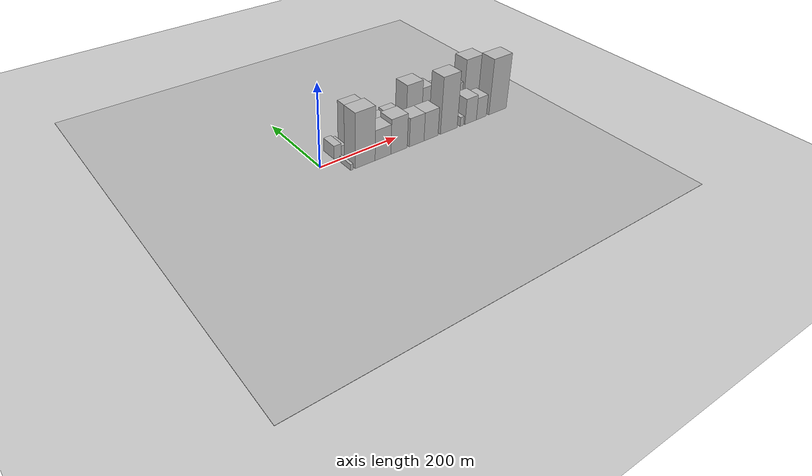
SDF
<?xml version="1.0" encoding="utf-8"?>

<sdf version="1.6">

   <world name="default">

      <gui fullscreen="0">

         <camera name="user_camera">

            <pose>-15 0 4.57585 0 0 0</pose>

            <view_controller>orbit</view_controller>

         </camera>

      </gui>

      <scene>

         <sky>

           <clouds>

             <speed>12</speed>

           </clouds>

         </sky>

         <ambient>0.4 0.4 0.4 1</ambient>

         <background>0.7 0.7 0.7 1</background>

         <shadows>1</shadows>

      </scene>

      <gravity>0 0 -9.8066</gravity>

      <magnetic_field>6e-06 2.3e-05 -4.2e-05</magnetic_field>

      <physics default="0" name="default_physics" type="ode">

         <ode>

            <solver>

               <type>quick</type>

               <iters>10</iters>

               <sor>1.0</sor>

               <use_dynamic_moi_rescaling>0</use_dynamic_moi_rescaling>

            </solver>

            <constraints>

               <cfm>0</cfm>

               <erp>0.2</erp>

               <contact_max_correcting_vel>100</contact_max_correcting_vel>

               <contact_surface_layer>0.001</contact_surface_layer>

            </constraints>

         </ode>

         <max_step_size>0.004</max_step_size>

         <real_time_factor>1</real_time_factor>

         <real_time_update_rate>250</real_time_update_rate>

      </physics>

      <light name="sun" type="directional">

         <cast_shadows>1</cast_shadows>

         <pose>0 0 10 0 0 0</pose>

         <diffuse>0.8 0.8 0.8 1</diffuse>

         <specular>0.2 0.2 0.2 1</specular>

         <attenuation>

            <range>1000</range>

            <constant>0.9</constant>

            <linear>0.01</linear>

            <quadratic>0.001</quadratic>

         </attenuation>

         <direction>-0.5 0.1 -0.9</direction>

      </light>

      <include>

         <name>ground_plane_1</name>

         <uri>model://HANNAS_ground_plane</uri>

         <pose>0 0 0  0 0 0</pose>

      </include>

      <include>

         <name>ground_plane_2</name>

         <uri>model://HANNAS_ground_plane</uri>

         <pose>100 0 0  0 0 0</pose>

      </include>

      <model name="building_1">

         <static>1</static>

         <pose frame="">49.5607 27.5000 0 0.000000 0.000000 1.570796</pose>

         <link name="link">

            <pose frame="">0 0 16.50 0 0 0</pose>

            <collision name="collision">

               <geometry>

                  <box>

                     <size>40.0000 19.1213 33.0000</size>

                  </box>

               </geometry>

               <max_contacts>10</max_contacts>

               <surface>

                  <contact>

                     <ode/>

                  </contact>

                  <bounce/>

                  <friction>

                     <torsional>

                        <ode/>

                     </torsional>

                     <ode/>

                  </friction>

               </surface>

            </collision>

            <visual name="visual">

               <cast_shadows>0</cast_shadows>

               <geometry>

                  <box>

                     <size>40.0000 19.1213 33.0000</size>

                  </box>

               </geometry>

               <material>

                  <script>

                     <uri>model://HANNAS_wall/materials/scripts</uri>

                     <uri>model://HANNAS_wall/materials/textures</uri>

                     <name>vrc/HANNAS_wall</name>

                  </script>

               </material>

            </visual>

            <self_collide>0</self_collide>

            <enable_wind>0</enable_wind>

            <kinematic>0</kinematic>

         </link>

      </model>

      <model name="building_2">

         <static>1</static>

         <pose frame="">64.6981 27.5000 0 0.000000 0.000000 1.570796</pose>

         <link name="link">

            <pose frame="">0 0 13.50 0 0 0</pose>

            <collision name="collision">

               <geometry>

                  <box>

                     <size>40.0000 11.1535 27.0000</size>

                  </box>

               </geometry>

               <max_contacts>10</max_contacts>

               <surface>

                  <contact>

                     <ode/>

                  </contact>

                  <bounce/>

                  <friction>

                     <torsional>

                        <ode/>

                     </torsional>

                     <ode/>

                  </friction>

               </surface>

            </collision>

            <visual name="visual">

               <cast_shadows>0</cast_shadows>

               <geometry>

                  <box>

                     <size>40.0000 11.1535 27.0000</size>

                  </box>

               </geometry>

               <material>

                  <script>

                     <uri>model://HANNAS_wall/materials/scripts</uri>

                     <uri>model://HANNAS_wall/materials/textures</uri>

                     <name>vrc/HANNAS_wall</name>

                  </script>

               </material>

            </visual>

            <self_collide>0</self_collide>

            <enable_wind>0</enable_wind>

            <kinematic>0</kinematic>

         </link>

      </model>

      <model name="building_3">

         <static>1</static>

         <pose frame="">99.5088 27.5000 0 0.000000 0.000000 1.570796</pose>

         <link name="link">

            <pose frame="">0 0 57.00 0 0 0</pose>

            <collision name="collision">

               <geometry>

                  <box>

                     <size>40.0000 44.4681 114.0000</size>

                  </box>

               </geometry>

               <max_contacts>10</max_contacts>

               <surface>

                  <contact>

                     <ode/>

                  </contact>

                  <bounce/>

                  <friction>

                     <torsional>

                        <ode/>

                     </torsional>

                     <ode/>

                  </friction>

               </surface>

            </collision>

            <visual name="visual">

               <cast_shadows>0</cast_shadows>

               <geometry>

                  <box>

                     <size>40.0000 44.4681 114.0000</size>

                  </box>

               </geometry>

               <material>

                  <script>

                     <uri>model://HANNAS_wall/materials/scripts</uri>

                     <uri>model://HANNAS_wall/materials/textures</uri>

                     <name>vrc/HANNAS_wall</name>

                  </script>

               </material>

            </visual>

            <self_collide>0</self_collide>

            <enable_wind>0</enable_wind>

            <kinematic>0</kinematic>

         </link>

      </model>

      <model name="building_4">

         <static>1</static>

         <pose frame="">136.1233 27.5000 0 0.000000 0.000000 1.570796</pose>

         <link name="link">

            <pose frame="">0 0 28.50 0 0 0</pose>

            <collision name="collision">

               <geometry>

                  <box>

                     <size>40.0000 28.7609 57.0000</size>

                  </box>

               </geometry>

               <max_contacts>10</max_contacts>

               <surface>

                  <contact>

                     <ode/>

                  </contact>

                  <bounce/>

                  <friction>

                     <torsional>

                        <ode/>

                     </torsional>

                     <ode/>

                  </friction>

               </surface>

            </collision>

            <visual name="visual">

               <cast_shadows>0</cast_shadows>

               <geometry>

                  <box>

                     <size>40.0000 28.7609 57.0000</size>

                  </box>

               </geometry>

               <material>

                  <script>

                     <uri>model://HANNAS_wall/materials/scripts</uri>

                     <uri>model://HANNAS_wall/materials/textures</uri>

                     <name>vrc/HANNAS_wall</name>

                  </script>

               </material>

            </visual>

            <self_collide>0</self_collide>

            <enable_wind>0</enable_wind>

            <kinematic>0</kinematic>

         </link>

      </model>

      <model name="building_5">

         <static>1</static>

         <pose frame="">171.5730 27.5000 0 0.000000 0.000000 1.570796</pose>

         <link name="link">

            <pose frame="">0 0 27.00 0 0 0</pose>

            <collision name="collision">

               <geometry>

                  <box>

                     <size>40.0000 30.1384 54.0000</size>

                  </box>

               </geometry>

               <max_contacts>10</max_contacts>

               <surface>

                  <contact>

                     <ode/>

                  </contact>

                  <bounce/>

                  <friction>

                     <torsional>

                        <ode/>

                     </torsional>

                     <ode/>

                  </friction>

               </surface>

            </collision>

            <visual name="visual">

               <cast_shadows>0</cast_shadows>

               <geometry>

                  <box>

                     <size>40.0000 30.1384 54.0000</size>

                  </box>

               </geometry>

               <material>

                  <script>

                     <uri>model://HANNAS_wall/materials/scripts</uri>

                     <uri>model://HANNAS_wall/materials/textures</uri>

                     <name>vrc/HANNAS_wall</name>

                  </script>

               </material>

            </visual>

            <self_collide>0</self_collide>

            <enable_wind>0</enable_wind>

            <kinematic>0</kinematic>

         </link>

      </model>

      <model name="building_6">

         <static>1</static>

         <pose frame="">204.2278 27.5000 0 0.000000 0.000000 1.570796</pose>

         <link name="link">

            <pose frame="">0 0 30.00 0 0 0</pose>

            <collision name="collision">

               <geometry>

                  <box>

                     <size>40.0000 35.1713 60.0000</size>

                  </box>

               </geometry>

               <max_contacts>10</max_contacts>

               <surface>

                  <contact>

                     <ode/>

                  </contact>

                  <bounce/>

                  <friction>

                     <torsional>

                        <ode/>

                     </torsional>

                     <ode/>

                  </friction>

               </surface>

            </collision>

            <visual name="visual">

               <cast_shadows>0</cast_shadows>

               <geometry>

                  <box>

                     <size>40.0000 35.1713 60.0000</size>

                  </box>

               </geometry>

               <material>

                  <script>

                     <uri>model://HANNAS_wall/materials/scripts</uri>

                     <uri>model://HANNAS_wall/materials/textures</uri>

                     <name>vrc/HANNAS_wall</name>

                  </script>

               </material>

            </visual>

            <self_collide>0</self_collide>

            <enable_wind>0</enable_wind>

            <kinematic>0</kinematic>

         </link>

      </model>

      <model name="building_7">

         <static>1</static>

         <pose frame="">227.9270 27.5000 0 0.000000 0.000000 1.570796</pose>

         <link name="link">

            <pose frame="">0 0 13.50 0 0 0</pose>

            <collision name="collision">

               <geometry>

                  <box>

                     <size>40.0000 12.2270 27.0000</size>

                  </box>

               </geometry>

               <max_contacts>10</max_contacts>

               <surface>

                  <contact>

                     <ode/>

                  </contact>

                  <bounce/>

                  <friction>

                     <torsional>

                        <ode/>

                     </torsional>

                     <ode/>

                  </friction>

               </surface>

            </collision>

            <visual name="visual">

               <cast_shadows>0</cast_shadows>

               <geometry>

                  <box>

                     <size>40.0000 12.2270 27.0000</size>

                  </box>

               </geometry>

               <material>

                  <script>

                     <uri>model://HANNAS_wall/materials/scripts</uri>

                     <uri>model://HANNAS_wall/materials/textures</uri>

                     <name>vrc/HANNAS_wall</name>

                  </script>

               </material>

            </visual>

            <self_collide>0</self_collide>

            <enable_wind>0</enable_wind>

            <kinematic>0</kinematic>

         </link>

      </model>

      <model name="building_8">

         <static>1</static>

         <pose frame="">256.5450 27.5000 0 0.000000 0.000000 1.570796</pose>

         <link name="link">

            <pose frame="">0 0 58.50 0 0 0</pose>

            <collision name="collision">

               <geometry>

                  <box>

                     <size>40.0000 45.0088 117.0000</size>

                  </box>

               </geometry>

               <max_contacts>10</max_contacts>

               <surface>

                  <contact>

                     <ode/>

                  </contact>

                  <bounce/>

                  <friction>

                     <torsional>

                        <ode/>

                     </torsional>

                     <ode/>

                  </friction>

               </surface>

            </collision>

            <visual name="visual">

               <cast_shadows>0</cast_shadows>

               <geometry>

                  <box>

                     <size>40.0000 45.0088 117.0000</size>

                  </box>

               </geometry>

               <material>

                  <script>

                     <uri>model://HANNAS_wall/materials/scripts</uri>

                     <uri>model://HANNAS_wall/materials/textures</uri>

                     <name>vrc/HANNAS_wall</name>

                  </script>

               </material>

            </visual>

            <self_collide>0</self_collide>

            <enable_wind>0</enable_wind>

            <kinematic>0</kinematic>

         </link>

      </model>

      <model name="building_9">

         <static>1</static>

         <pose frame="">294.1716 27.5000 0 0.000000 0.000000 1.570796</pose>

         <link name="link">

            <pose frame="">0 0 48.00 0 0 0</pose>

            <collision name="collision">

               <geometry>

                  <box>

                     <size>40.0000 30.2445 96.0000</size>

                  </box>

               </geometry>

               <max_contacts>10</max_contacts>

               <surface>

                  <contact>

                     <ode/>

                  </contact>

                  <bounce/>

                  <friction>

                     <torsional>

                        <ode/>

                     </torsional>

                     <ode/>

                  </friction>

               </surface>

            </collision>

            <visual name="visual">

               <cast_shadows>0</cast_shadows>

               <geometry>

                  <box>

                     <size>40.0000 30.2445 96.0000</size>

                  </box>

               </geometry>

               <material>

                  <script>

                     <uri>model://HANNAS_wall/materials/scripts</uri>

                     <uri>model://HANNAS_wall/materials/textures</uri>

                     <name>vrc/HANNAS_wall</name>

                  </script>

               </material>

            </visual>

            <self_collide>0</self_collide>

            <enable_wind>0</enable_wind>

            <kinematic>0</kinematic>

         </link>

      </model>

      <model name="building_10">

         <static>1</static>

         <pose frame="">331.5309 27.5000 0 0.000000 0.000000 1.570796</pose>

         <link name="link">

            <pose frame="">0 0 40.50 0 0 0</pose>

            <collision name="collision">

               <geometry>

                  <box>

                     <size>40.0000 44.4741 81.0000</size>

                  </box>

               </geometry>

               <max_contacts>10</max_contacts>

               <surface>

                  <contact>

                     <ode/>

                  </contact>

                  <bounce/>

                  <friction>

                     <torsional>

                        <ode/>

                     </torsional>

                     <ode/>

                  </friction>

               </surface>

            </collision>

            <visual name="visual">

               <cast_shadows>0</cast_shadows>

               <geometry>

                  <box>

                     <size>40.0000 44.4741 81.0000</size>

                  </box>

               </geometry>

               <material>

                  <script>

                     <uri>model://HANNAS_wall/materials/scripts</uri>

                     <uri>model://HANNAS_wall/materials/textures</uri>

                     <name>vrc/HANNAS_wall</name>

                  </script>

               </material>

            </visual>

            <self_collide>0</self_collide>

            <enable_wind>0</enable_wind>

            <kinematic>0</kinematic>

         </link>

      </model>

      <model name="building_11">

         <static>1</static>

         <pose frame="">379.2268 27.5000 0 0.000000 0.000000 1.570796</pose>

         <link name="link">

            <pose frame="">0 0 37.50 0 0 0</pose>

            <collision name="collision">

               <geometry>

                  <box>

                     <size>40.0000 40.9176 75.0000</size>

                  </box>

               </geometry>

               <max_contacts>10</max_contacts>

               <surface>

                  <contact>

                     <ode/>

                  </contact>

                  <bounce/>

                  <friction>

                     <torsional>

                        <ode/>

                     </torsional>

                     <ode/>

                  </friction>

               </surface>

            </collision>

            <visual name="visual">

               <cast_shadows>0</cast_shadows>

               <geometry>

                  <box>

                     <size>40.0000 40.9176 75.0000</size>

                  </box>

               </geometry>

               <material>

                  <script>

                     <uri>model://HANNAS_wall/materials/scripts</uri>

                     <uri>model://HANNAS_wall/materials/textures</uri>

                     <name>vrc/HANNAS_wall</name>

                  </script>

               </material>

            </visual>

            <self_collide>0</self_collide>

            <enable_wind>0</enable_wind>

            <kinematic>0</kinematic>

         </link>

      </model>

      <model name="building_12">

         <static>1</static>

         <pose frame="">431.3917 27.5000 0 0.000000 0.000000 1.570796</pose>

         <link name="link">

            <pose frame="">0 0 64.50 0 0 0</pose>

            <collision name="collision">

               <geometry>

                  <box>

                     <size>40.0000 51.4122 129.0000</size>

                  </box>

               </geometry>

               <max_contacts>10</max_contacts>

               <surface>

                  <contact>

                     <ode/>

                  </contact>

                  <bounce/>

                  <friction>

                     <torsional>

                        <ode/>

                     </torsional>

                     <ode/>

                  </friction>

               </surface>

            </collision>

            <visual name="visual">

               <cast_shadows>0</cast_shadows>

               <geometry>

                  <box>

                     <size>40.0000 51.4122 129.0000</size>

                  </box>

               </geometry>

               <material>

                  <script>

                     <uri>model://HANNAS_wall/materials/scripts</uri>

                     <uri>model://HANNAS_wall/materials/textures</uri>

                     <name>vrc/HANNAS_wall</name>

                  </script>

               </material>

            </visual>

            <self_collide>0</self_collide>

            <enable_wind>0</enable_wind>

            <kinematic>0</kinematic>

         </link>

      </model>

      <model name="building_13">

         <static>1</static>

         <pose frame="">48.3441 -27.5000 0 0.000000 0.000000 1.570796</pose>

         <link name="link">

            <pose frame="">0 0 7.50 0 0 0</pose>

            <collision name="collision">

               <geometry>

                  <box>

                     <size>40.0000 6.6882 15.0000</size>

                  </box>

               </geometry>

               <max_contacts>10</max_contacts>

               <surface>

                  <contact>

                     <ode/>

                  </contact>

                  <bounce/>

                  <friction>

                     <torsional>

                        <ode/>

                     </torsional>

                     <ode/>

                  </friction>

               </surface>

            </collision>

            <visual name="visual">

               <cast_shadows>0</cast_shadows>

               <geometry>

                  <box>

                     <size>40.0000 6.6882 15.0000</size>

                  </box>

               </geometry>

               <material>

                  <script>

                     <uri>model://HANNAS_wall/materials/scripts</uri>

                     <uri>model://HANNAS_wall/materials/textures</uri>

                     <name>vrc/HANNAS_wall</name>

                  </script>

               </material>

            </visual>

            <self_collide>0</self_collide>

            <enable_wind>0</enable_wind>

            <kinematic>0</kinematic>

         </link>

      </model>

      <model name="building_14">

         <static>1</static>

         <pose frame="">82.2891 -27.5000 0 0.000000 0.000000 1.570796</pose>

         <link name="link">

            <pose frame="">0 0 67.50 0 0 0</pose>

            <collision name="collision">

               <geometry>

                  <box>

                     <size>40.0000 51.2019 135.0000</size>

                  </box>

               </geometry>

               <max_contacts>10</max_contacts>

               <surface>

                  <contact>

                     <ode/>

                  </contact>

                  <bounce/>

                  <friction>

                     <torsional>

                        <ode/>

                     </torsional>

                     <ode/>

                  </friction>

               </surface>

            </collision>

            <visual name="visual">

               <cast_shadows>0</cast_shadows>

               <geometry>

                  <box>

                     <size>40.0000 51.2019 135.0000</size>

                  </box>

               </geometry>

               <material>

                  <script>

                     <uri>model://HANNAS_wall/materials/scripts</uri>

                     <uri>model://HANNAS_wall/materials/textures</uri>

                     <name>vrc/HANNAS_wall</name>

                  </script>

               </material>

            </visual>

            <self_collide>0</self_collide>

            <enable_wind>0</enable_wind>

            <kinematic>0</kinematic>

         </link>

      </model>

      <model name="building_15">

         <static>1</static>

         <pose frame="">129.0529 -27.5000 0 0.000000 0.000000 1.570796</pose>

         <link name="link">

            <pose frame="">0 0 37.50 0 0 0</pose>

            <collision name="collision">

               <geometry>

                  <box>

                     <size>40.0000 42.3256 75.0000</size>

                  </box>

               </geometry>

               <max_contacts>10</max_contacts>

               <surface>

                  <contact>

                     <ode/>

                  </contact>

                  <bounce/>

                  <friction>

                     <torsional>

                        <ode/>

                     </torsional>

                     <ode/>

                  </friction>

               </surface>

            </collision>

            <visual name="visual">

               <cast_shadows>0</cast_shadows>

               <geometry>

                  <box>

                     <size>40.0000 42.3256 75.0000</size>

                  </box>

               </geometry>

               <material>

                  <script>

                     <uri>model://HANNAS_wall/materials/scripts</uri>

                     <uri>model://HANNAS_wall/materials/textures</uri>

                     <name>vrc/HANNAS_wall</name>

                  </script>

               </material>

            </visual>

            <self_collide>0</self_collide>

            <enable_wind>0</enable_wind>

            <kinematic>0</kinematic>

         </link>

      </model>

      <model name="building_16">

         <static>1</static>

         <pose frame="">172.3484 -27.5000 0 0.000000 0.000000 1.570796</pose>

         <link name="link">

            <pose frame="">0 0 43.50 0 0 0</pose>

            <collision name="collision">

               <geometry>

                  <box>

                     <size>40.0000 44.2655 87.0000</size>

                  </box>

               </geometry>

               <max_contacts>10</max_contacts>

               <surface>

                  <contact>

                     <ode/>

                  </contact>

                  <bounce/>

                  <friction>

                     <torsional>

                        <ode/>

                     </torsional>

                     <ode/>

                  </friction>

               </surface>

            </collision>

            <visual name="visual">

               <cast_shadows>0</cast_shadows>

               <geometry>

                  <box>

                     <size>40.0000 44.2655 87.0000</size>

                  </box>

               </geometry>

               <material>

                  <script>

                     <uri>model://HANNAS_wall/materials/scripts</uri>

                     <uri>model://HANNAS_wall/materials/textures</uri>

                     <name>vrc/HANNAS_wall</name>

                  </script>

               </material>

            </visual>

            <self_collide>0</self_collide>

            <enable_wind>0</enable_wind>

            <kinematic>0</kinematic>

         </link>

      </model>

      <model name="building_17">

         <static>1</static>

         <pose frame="">221.0732 -27.5000 0 0.000000 0.000000 1.570796</pose>

         <link name="link">

            <pose frame="">0 0 36.00 0 0 0</pose>

            <collision name="collision">

               <geometry>

                  <box>

                     <size>40.0000 41.1842 72.0000</size>

                  </box>

               </geometry>

               <max_contacts>10</max_contacts>

               <surface>

                  <contact>

                     <ode/>

                  </contact>

                  <bounce/>

                  <friction>

                     <torsional>

                        <ode/>

                     </torsional>

                     <ode/>

                  </friction>

               </surface>

            </collision>

            <visual name="visual">

               <cast_shadows>0</cast_shadows>

               <geometry>

                  <box>

                     <size>40.0000 41.1842 72.0000</size>

                  </box>

               </geometry>

               <material>

                  <script>

                     <uri>model://HANNAS_wall/materials/scripts</uri>

                     <uri>model://HANNAS_wall/materials/textures</uri>

                     <name>vrc/HANNAS_wall</name>

                  </script>

               </material>

            </visual>

            <self_collide>0</self_collide>

            <enable_wind>0</enable_wind>

            <kinematic>0</kinematic>

         </link>

      </model>

      <model name="building_18">

         <static>1</static>

         <pose frame="">261.8798 -27.5000 0 0.000000 0.000000 1.570796</pose>

         <link name="link">

            <pose frame="">0 0 36.00 0 0 0</pose>

            <collision name="collision">

               <geometry>

                  <box>

                     <size>40.0000 40.4288 72.0000</size>

                  </box>

               </geometry>

               <max_contacts>10</max_contacts>

               <surface>

                  <contact>

                     <ode/>

                  </contact>

                  <bounce/>

                  <friction>

                     <torsional>

                        <ode/>

                     </torsional>

                     <ode/>

                  </friction>

               </surface>

            </collision>

            <visual name="visual">

               <cast_shadows>0</cast_shadows>

               <geometry>

                  <box>

                     <size>40.0000 40.4288 72.0000</size>

                  </box>

               </geometry>

               <material>

                  <script>

                     <uri>model://HANNAS_wall/materials/scripts</uri>

                     <uri>model://HANNAS_wall/materials/textures</uri>

                     <name>vrc/HANNAS_wall</name>

                  </script>

               </material>

            </visual>

            <self_collide>0</self_collide>

            <enable_wind>0</enable_wind>

            <kinematic>0</kinematic>

         </link>

      </model>

      <model name="building_19">

         <static>1</static>

         <pose frame="">313.8460 -27.5000 0 0.000000 0.000000 1.570796</pose>

         <link name="link">

            <pose frame="">0 0 72.00 0 0 0</pose>

            <collision name="collision">

               <geometry>

                  <box>

                     <size>40.0000 49.5036 144.0000</size>

                  </box>

               </geometry>

               <max_contacts>10</max_contacts>

               <surface>

                  <contact>

                     <ode/>

                  </contact>

                  <bounce/>

                  <friction>

                     <torsional>

                        <ode/>

                     </torsional>

                     <ode/>

                  </friction>

               </surface>

            </collision>

            <visual name="visual">

               <cast_shadows>0</cast_shadows>

               <geometry>

                  <box>

                     <size>40.0000 49.5036 144.0000</size>

                  </box>

               </geometry>

               <material>

                  <script>

                     <uri>model://HANNAS_wall/materials/scripts</uri>

                     <uri>model://HANNAS_wall/materials/textures</uri>

                     <name>vrc/HANNAS_wall</name>

                  </script>

               </material>

            </visual>

            <self_collide>0</self_collide>

            <enable_wind>0</enable_wind>

            <kinematic>0</kinematic>

         </link>

      </model>

      <model name="building_20">

         <static>1</static>

         <pose frame="">352.9957 -27.5000 0 0.000000 0.000000 1.570796</pose>

         <link name="link">

            <pose frame="">0 0 12.00 0 0 0</pose>

            <collision name="collision">

               <geometry>

                  <box>

                     <size>40.0000 10.7958 24.0000</size>

                  </box>

               </geometry>

               <max_contacts>10</max_contacts>

               <surface>

                  <contact>

                     <ode/>

                  </contact>

                  <bounce/>

                  <friction>

                     <torsional>

                        <ode/>

                     </torsional>

                     <ode/>

                  </friction>

               </surface>

            </collision>

            <visual name="visual">

               <cast_shadows>0</cast_shadows>

               <geometry>

                  <box>

                     <size>40.0000 10.7958 24.0000</size>

                  </box>

               </geometry>

               <material>

                  <script>

                     <uri>model://HANNAS_wall/materials/scripts</uri>

                     <uri>model://HANNAS_wall/materials/textures</uri>

                     <name>vrc/HANNAS_wall</name>

                  </script>

               </material>

            </visual>

            <self_collide>0</self_collide>

            <enable_wind>0</enable_wind>

            <kinematic>0</kinematic>

         </link>

      </model>

      <model name="building_21">

         <static>1</static>

         <pose frame="">379.7557 -27.5000 0 0.000000 0.000000 1.570796</pose>

         <link name="link">

            <pose frame="">0 0 33.00 0 0 0</pose>

            <collision name="collision">

               <geometry>

                  <box>

                     <size>40.0000 34.7243 66.0000</size>

                  </box>

               </geometry>

               <max_contacts>10</max_contacts>

               <surface>

                  <contact>

                     <ode/>

                  </contact>

                  <bounce/>

                  <friction>

                     <torsional>

                        <ode/>

                     </torsional>

                     <ode/>

                  </friction>

               </surface>

            </collision>

            <visual name="visual">

               <cast_shadows>0</cast_shadows>

               <geometry>

                  <box>

                     <size>40.0000 34.7243 66.0000</size>

                  </box>

               </geometry>

               <material>

                  <script>

                     <uri>model://HANNAS_wall/materials/scripts</uri>

                     <uri>model://HANNAS_wall/materials/textures</uri>

                     <name>vrc/HANNAS_wall</name>

                  </script>

               </material>

            </visual>

            <self_collide>0</self_collide>

            <enable_wind>0</enable_wind>

            <kinematic>0</kinematic>

         </link>

      </model>

      <model name="building_22">

         <static>1</static>

         <pose frame="">412.8083 -27.5000 0 0.000000 0.000000 1.570796</pose>

         <link name="link">

            <pose frame="">0 0 28.50 0 0 0</pose>

            <collision name="collision">

               <geometry>

                  <box>

                     <size>40.0000 31.3809 57.0000</size>

                  </box>

               </geometry>

               <max_contacts>10</max_contacts>

               <surface>

                  <contact>

                     <ode/>

                  </contact>

                  <bounce/>

                  <friction>

                     <torsional>

                        <ode/>

                     </torsional>

                     <ode/>

                  </friction>

               </surface>

            </collision>

            <visual name="visual">

               <cast_shadows>0</cast_shadows>

               <geometry>

                  <box>

                     <size>40.0000 31.3809 57.0000</size>

                  </box>

               </geometry>

               <material>

                  <script>

                     <uri>model://HANNAS_wall/materials/scripts</uri>

                     <uri>model://HANNAS_wall/materials/textures</uri>

                     <name>vrc/HANNAS_wall</name>

                  </script>

               </material>

            </visual>

            <self_collide>0</self_collide>

            <enable_wind>0</enable_wind>

            <kinematic>0</kinematic>

         </link>

      </model>

      <model name="building_23">

         <static>1</static>

         <pose frame="">464.3433 -27.5000 0 0.000000 0.000000 1.570796</pose>

         <link name="link">

            <pose frame="">0 0 72.00 0 0 0</pose>

            <collision name="collision">

               <geometry>

                  <box>

                     <size>40.0000 55.6891 144.0000</size>

                  </box>

               </geometry>

               <max_contacts>10</max_contacts>

               <surface>

                  <contact>

                     <ode/>

                  </contact>

                  <bounce/>

                  <friction>

                     <torsional>

                        <ode/>

                     </torsional>

                     <ode/>

                  </friction>

               </surface>

            </collision>

            <visual name="visual">

               <cast_shadows>0</cast_shadows>

               <geometry>

                  <box>

                     <size>40.0000 55.6891 144.0000</size>

                  </box>

               </geometry>

               <material>

                  <script>

                     <uri>model://HANNAS_wall/materials/scripts</uri>

                     <uri>model://HANNAS_wall/materials/textures</uri>

                     <name>vrc/HANNAS_wall</name>

                  </script>

               </material>

            </visual>

            <self_collide>0</self_collide>

            <enable_wind>0</enable_wind>

            <kinematic>0</kinematic>

         </link>

      </model>

   </world>

</sdf>

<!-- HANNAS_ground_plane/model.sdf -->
<sdf version="1.4">
<model name="HANNAS_ground_plane">
  <static>true</static>
    <link name="link">
      <collision name="collision">
        <geometry>
          <plane>
            <normal>0 0 1</normal>
            <size>1000 1000</size>
          </plane>
        </geometry>
        <surface>
          <friction>
            <ode>
              <mu>100</mu>
              <mu2>50</mu2>
            </ode>
          </friction>
        </surface>
      </collision>
      <visual name="visual">
        <cast_shadows>false</cast_shadows>
        <geometry>
          <plane>
            <normal>0 0 1</normal>
            <size>1000 1000</size>
          </plane>
        </geometry>
        <material>
          <script>
            <uri>model://HANNAS_ground_plane/materials/scripts/HANNAS_ground_plane.material</uri>
	    <uri>model://HANNAS_ground_plane/materials/textures</uri>
            <name>HANNASGroundPlane/Image</name>
          </script>
        </material>
      </visual>
    </link>
  </model>
</sdf>
